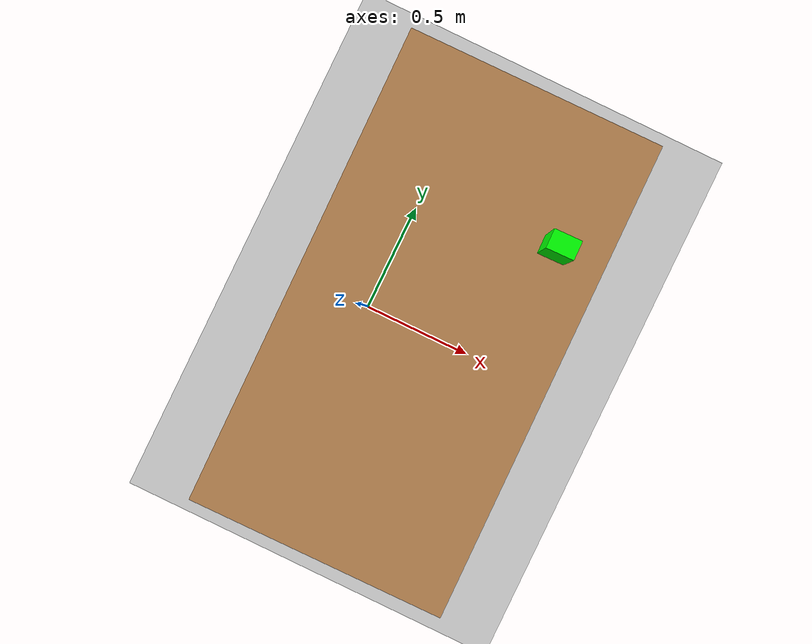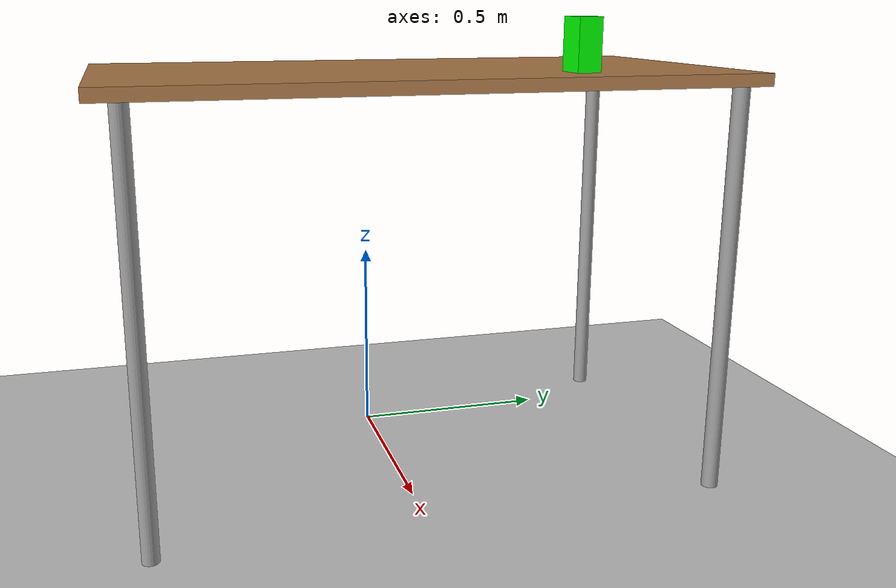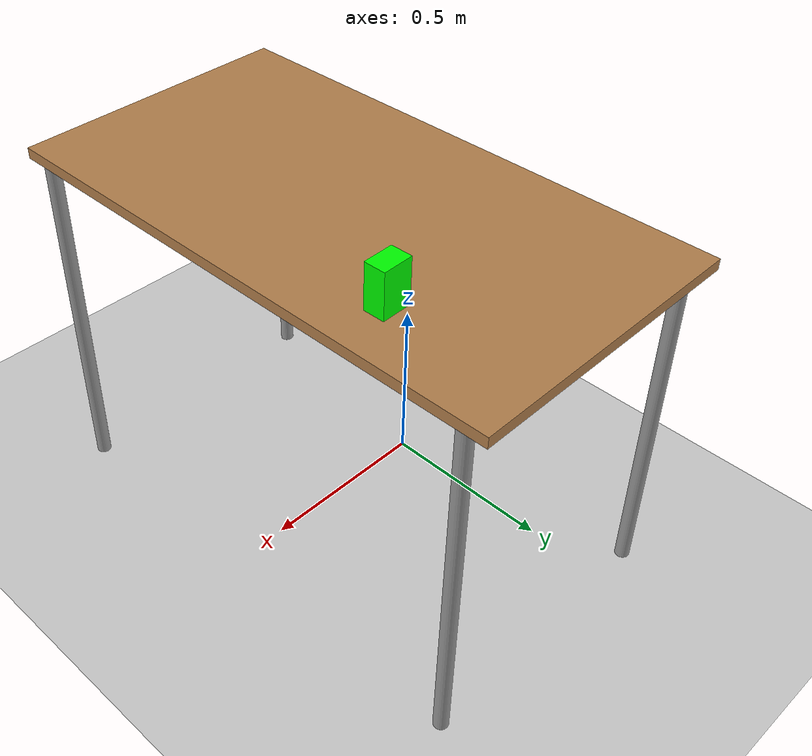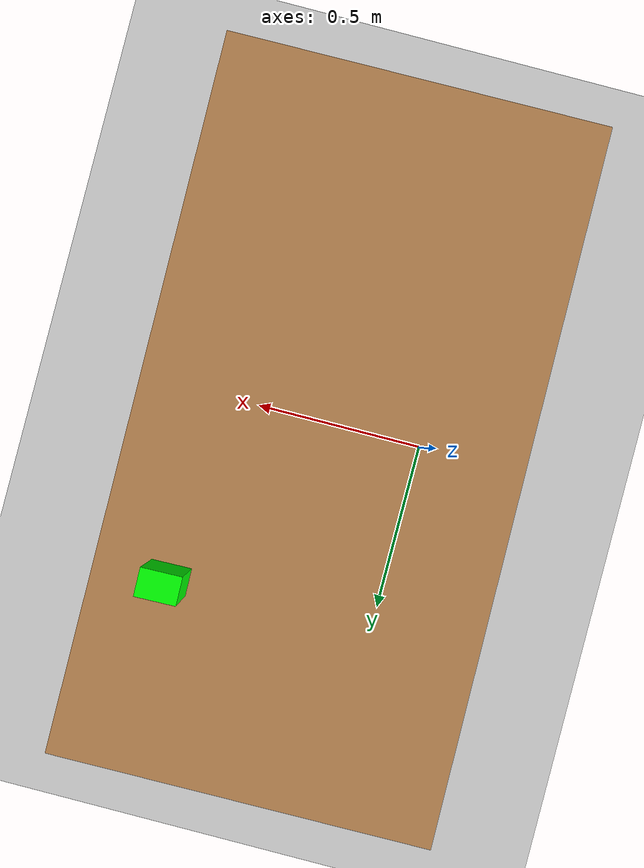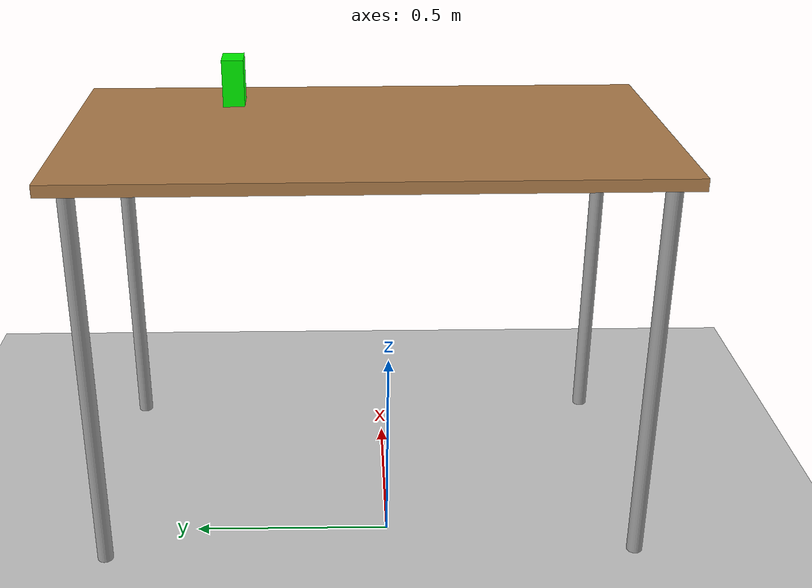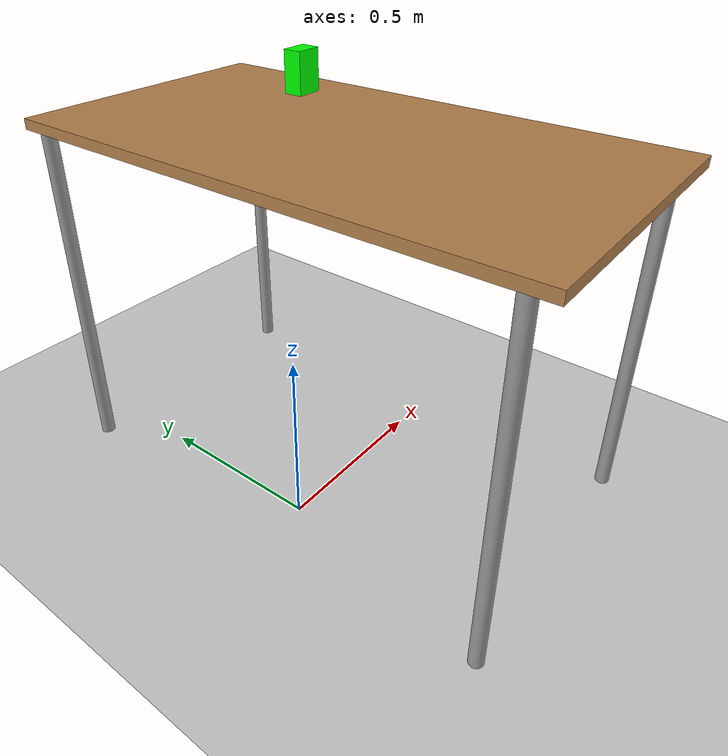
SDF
<sdf version="1.6">
 <world name="default">
  <light name="sun" type="directional">
   <pose>0 0 10 0 -0 0</pose>
   <diffuse>0.8 0.8 0.8 1</diffuse>
   <specular>0.2 0.2 0.2 1</specular>
   <attenuation>
    <range>1000</range>
    <constant>0.9</constant>
    <linear>0.01</linear>
    <quadratic>0.001</quadratic>
   </attenuation>
   <direction>-0.5 0.1 -0.9</direction>
  </light>
  <model name="ground_plane">
   <static>1</static>
   <link name="link">
    <collision name="collision">
     <geometry><plane><normal>0 0 1</normal><size>100 100</size></plane></geometry>
     <surface>
      <contact><collide_bitmask>65535</collide_bitmask></contact>
      <friction><ode><mu>100</mu><mu2>50</mu2></ode></friction>
     </surface>
    </collision>
    <visual name="visual">
     <cast_shadows>0</cast_shadows>
     <geometry><plane><normal>0 0 1</normal><size>100 100</size></plane></geometry>
     <material>
      <script><uri>file://media/materials/scripts/gazebo.material</uri><name>Gazebo/Grey</name></script>
     </material>
    </visual>
   </link>
  </model>
  <gravity>0 0 -9.8</gravity>
  <magnetic_field>6e-06 2.3e-05 -4.2e-05</magnetic_field>
  <atmosphere type="adiabatic"/>
  <physics name="default_physics" default="0" type="ode">
   <max_step_size>0.001</max_step_size>
   <real_time_factor>1</real_time_factor>
   <real_time_update_rate>1000</real_time_update_rate>
  </physics>
  <scene><ambient>0.4 0.4 0.4 1</ambient><background>0.7 0.7 0.7 1</background><shadows>1</shadows></scene>
  <spherical_coordinates>
   <surface_model>EARTH_WGS84</surface_model>
   <latitude_deg>0</latitude_deg>
   <longitude_deg>0</longitude_deg>
   <elevation>0</elevation>
   <heading_deg>0</heading_deg>
  </spherical_coordinates>
  <model name="unit_box_cuboid3">
   <link name="link">
    <inertial>
     <mass>0.539714</mass>
     <inertia>
      <ixx>0.00083945</ixx>
      <ixy>0</ixy>
      <ixz>0</ixz>
      <iyy>0.000999456</iyy>
      <iyz>0</iyz>
      <izz>0.000453123</izz>
     </inertia>
    </inertial>
    <pose>-0 -0 0.983709 0 -0 0</pose>
    <visual name="visual">
     <geometry><box><size>0.08256 0.057084 0.12412</size></box></geometry>
     <material>
      <script><name>Gazebo/Grey</name><uri>file://media/materials/scripts/gazebo.material</uri></script>
      <shader type="pixel"><normal_map>__default__</normal_map></shader>
      <ambient>0 1 0 0</ambient>
      <diffuse>0.7 0.7 0.7 1</diffuse>
      <specular>0.01 0.01 0.01 1</specular>
      <emissive>0 0 0 1</emissive>
     </material>
    </visual>
    <collision name="collision">
     <geometry><box><size>0.08256 0.057084 0.12412</size></box></geometry>
     <surface>
      <friction>
       <ode><mu>1</mu><mu2>1</mu2><fdir1>0 0 0</fdir1><slip1>0</slip1><slip2>0</slip2></ode>
       <torsional>
        <coefficient>1</coefficient>
        <patch_radius>0</patch_radius>
        <surface_radius>0</surface_radius>
        <use_patch_radius>1</use_patch_radius>
        <ode><slip>0</slip></ode>
       </torsional>
      </friction>
      <bounce><restitution_coefficient>0</restitution_coefficient><threshold>1e+06</threshold></bounce>
      <contact>
       <collide_without_contact>0</collide_without_contact>
       <collide_without_contact_bitmask>1</collide_without_contact_bitmask>
       <collide_bitmask>1</collide_bitmask>
       <ode>
        <soft_cfm>0</soft_cfm>
        <soft_erp>0.2</soft_erp>
        <kp>1e+13</kp>
        <kd>1</kd>
        <max_vel>0.01</max_vel>
        <min_depth>0</min_depth>
       </ode>
       <bullet>
        <split_impulse>1</split_impulse>
        <split_impulse_penetration_threshold>-0.01</split_impulse_penetration_threshold>
        <soft_cfm>0</soft_cfm>
        <soft_erp>0.2</soft_erp>
        <kp>1e+13</kp>
        <kd>1</kd>
       </bullet>
      </contact>
     </surface>
    </collision>
   </link>
   <static>0</static>
   <pose>0.510809 0.397023 0.093347 3.5e-05 -6.4e-05 0.022437</pose>
  </model>
  <model name="table1">
   <link name="link">
    <pose>-0.120516 -0.001132 0 0 0 -1.5614</pose>
    <visual name="visual1">
     <pose>0 0 1 0 -0 0</pose>
     <geometry><box><size>1.5 0.8 0.03</size></box></geometry>
     <material>
      <script><uri>file://media/materials/scripts/gazebo.material</uri><name>Gazebo/Wood</name></script>
      <shader type="pixel"/>
     </material>
    </visual>
    <visual name="back_left_leg">
     <pose>-0.68 0.38 0.5 0 -0 0</pose>
     <geometry><cylinder><radius>0.02</radius><length>1</length></cylinder></geometry>
     <material>
      <script><uri>file://media/materials/scripts/gazebo.material</uri><name>Gazebo/Grey</name></script>
      <shader type="pixel"/>
     </material>
    </visual>
    <visual name="front_right_leg">
     <pose>0.68 -0.38 0.5 0 -0 0</pose>
     <geometry><cylinder><radius>0.02</radius><length>1</length></cylinder></geometry>
     <material>
      <script><uri>file://media/materials/scripts/gazebo.material</uri><name>Gazebo/Grey</name></script>
      <shader type="pixel"/>
     </material>
    </visual>
    <visual name="back_right_leg">
     <pose>-0.68 -0.38 0.5 0 -0 0</pose>
     <geometry><cylinder><radius>0.02</radius><length>1</length></cylinder></geometry>
     <material>
      <script><uri>file://media/materials/scripts/gazebo.material</uri><name>Gazebo/Grey</name></script>
      <shader type="pixel"/>
     </material>
    </visual>
    <visual name="front_left_leg">
     <pose>0.68 0.38 0.5 0 -0 0</pose>
     <geometry><cylinder><radius>0.02</radius><length>1</length></cylinder></geometry>
     <material>
      <script><uri>file://media/materials/scripts/gazebo.material</uri><name>Gazebo/Grey</name></script>
      <shader type="pixel"/>
     </material>
    </visual>
    <collision name="surface">
     <pose>0 0 1 0 -0 0</pose>
     <geometry><box><size>1.5 0.8 0.03</size></box></geometry>
     <surface>
      <friction>
       <ode><mu>0.6</mu><mu2>0.6</mu2><fdir1>0 0 0</fdir1><slip1>0</slip1><slip2>0</slip2></ode>
       <torsional>
        <coefficient>1</coefficient>
        <patch_radius>0</patch_radius>
        <surface_radius>0</surface_radius>
        <use_patch_radius>1</use_patch_radius>
        <ode><slip>0</slip></ode>
       </torsional>
      </friction>
      <bounce><restitution_coefficient>0</restitution_coefficient><threshold>1e+06</threshold></bounce>
      <contact>
       <collide_without_contact>0</collide_without_contact>
       <collide_without_contact_bitmask>1</collide_without_contact_bitmask>
       <collide_bitmask>1</collide_bitmask>
       <ode>
        <soft_cfm>0</soft_cfm>
        <soft_erp>0.2</soft_erp>
        <kp>1e+13</kp>
        <kd>1</kd>
        <max_vel>0.01</max_vel>
        <min_depth>0</min_depth>
       </ode>
       <bullet>
        <split_impulse>1</split_impulse>
        <split_impulse_penetration_threshold>-0.01</split_impulse_penetration_threshold>
        <soft_cfm>0</soft_cfm>
        <soft_erp>0.2</soft_erp>
        <kp>1e+13</kp>
        <kd>1</kd>
       </bullet>
      </contact>
     </surface>
    </collision>
    <collision name="front_left_leg">
     <pose>0.68 0.38 0.5 0 -0 0</pose>
     <geometry><cylinder><radius>0.02</radius><length>1</length></cylinder></geometry>
     <surface>
      <friction>
       <ode><mu>1</mu><mu2>1</mu2><fdir1>0 0 0</fdir1><slip1>0</slip1><slip2>0</slip2></ode>
       <torsional>
        <coefficient>1</coefficient>
        <patch_radius>0</patch_radius>
        <surface_radius>0</surface_radius>
        <use_patch_radius>1</use_patch_radius>
        <ode><slip>0</slip></ode>
       </torsional>
      </friction>
      <bounce><restitution_coefficient>0</restitution_coefficient><threshold>1e+06</threshold></bounce>
      <contact>
       <collide_without_contact>0</collide_without_contact>
       <collide_without_contact_bitmask>1</collide_without_contact_bitmask>
       <collide_bitmask>1</collide_bitmask>
       <ode>
        <soft_cfm>0</soft_cfm>
        <soft_erp>0.2</soft_erp>
        <kp>1e+13</kp>
        <kd>1</kd>
        <max_vel>0.01</max_vel>
        <min_depth>0</min_depth>
       </ode>
       <bullet>
        <split_impulse>1</split_impulse>
        <split_impulse_penetration_threshold>-0.01</split_impulse_penetration_threshold>
        <soft_cfm>0</soft_cfm>
        <soft_erp>0.2</soft_erp>
        <kp>1e+13</kp>
        <kd>1</kd>
       </bullet>
      </contact>
     </surface>
    </collision>
    <collision name="back_right_leg">
     <pose>-0.68 -0.38 0.5 0 -0 0</pose>
     <geometry><cylinder><radius>0.02</radius><length>1</length></cylinder></geometry>
     <surface>
      <friction>
       <ode><mu>1</mu><mu2>1</mu2><fdir1>0 0 0</fdir1><slip1>0</slip1><slip2>0</slip2></ode>
       <torsional>
        <coefficient>1</coefficient>
        <patch_radius>0</patch_radius>
        <surface_radius>0</surface_radius>
        <use_patch_radius>1</use_patch_radius>
        <ode><slip>0</slip></ode>
       </torsional>
      </friction>
      <bounce><restitution_coefficient>0</restitution_coefficient><threshold>1e+06</threshold></bounce>
      <contact>
       <collide_without_contact>0</collide_without_contact>
       <collide_without_contact_bitmask>1</collide_without_contact_bitmask>
       <collide_bitmask>1</collide_bitmask>
       <ode>
        <soft_cfm>0</soft_cfm>
        <soft_erp>0.2</soft_erp>
        <kp>1e+13</kp>
        <kd>1</kd>
        <max_vel>0.01</max_vel>
        <min_depth>0</min_depth>
       </ode>
       <bullet>
        <split_impulse>1</split_impulse>
        <split_impulse_penetration_threshold>-0.01</split_impulse_penetration_threshold>
        <soft_cfm>0</soft_cfm>
        <soft_erp>0.2</soft_erp>
        <kp>1e+13</kp>
        <kd>1</kd>
       </bullet>
      </contact>
     </surface>
    </collision>
    <collision name="front_right_leg">
     <pose>0.68 -0.38 0.5 0 -0 0</pose>
     <geometry><cylinder><radius>0.02</radius><length>1</length></cylinder></geometry>
     <surface>
      <friction>
       <ode><mu>1</mu><mu2>1</mu2><fdir1>0 0 0</fdir1><slip1>0</slip1><slip2>0</slip2></ode>
       <torsional>
        <coefficient>1</coefficient>
        <patch_radius>0</patch_radius>
        <surface_radius>0</surface_radius>
        <use_patch_radius>1</use_patch_radius>
        <ode><slip>0</slip></ode>
       </torsional>
      </friction>
      <bounce><restitution_coefficient>0</restitution_coefficient><threshold>1e+06</threshold></bounce>
      <contact>
       <collide_without_contact>0</collide_without_contact>
       <collide_without_contact_bitmask>1</collide_without_contact_bitmask>
       <collide_bitmask>1</collide_bitmask>
       <ode>
        <soft_cfm>0</soft_cfm>
        <soft_erp>0.2</soft_erp>
        <kp>1e+13</kp>
        <kd>1</kd>
        <max_vel>0.01</max_vel>
        <min_depth>0</min_depth>
       </ode>
       <bullet>
        <split_impulse>1</split_impulse>
        <split_impulse_penetration_threshold>-0.01</split_impulse_penetration_threshold>
        <soft_cfm>0</soft_cfm>
        <soft_erp>0.2</soft_erp>
        <kp>1e+13</kp>
        <kd>1</kd>
       </bullet>
      </contact>
     </surface>
    </collision>
    <collision name="back_left_leg">
     <pose>-0.68 0.38 0.5 0 -0 0</pose>
     <geometry><cylinder><radius>0.02</radius><length>1</length></cylinder></geometry>
     <surface>
      <friction>
       <ode><mu>1</mu><mu2>1</mu2><fdir1>0 0 0</fdir1><slip1>0</slip1><slip2>0</slip2></ode>
       <torsional>
        <coefficient>1</coefficient>
        <patch_radius>0</patch_radius>
        <surface_radius>0</surface_radius>
        <use_patch_radius>1</use_patch_radius>
        <ode><slip>0</slip></ode>
       </torsional>
      </friction>
      <bounce><restitution_coefficient>0</restitution_coefficient><threshold>1e+06</threshold></bounce>
      <contact>
       <collide_without_contact>0</collide_without_contact>
       <collide_without_contact_bitmask>1</collide_without_contact_bitmask>
       <collide_bitmask>1</collide_bitmask>
       <ode>
        <soft_cfm>0</soft_cfm>
        <soft_erp>0.2</soft_erp>
        <kp>1e+13</kp>
        <kd>1</kd>
        <max_vel>0.01</max_vel>
        <min_depth>0</min_depth>
       </ode>
       <bullet>
        <split_impulse>1</split_impulse>
        <split_impulse_penetration_threshold>-0.01</split_impulse_penetration_threshold>
        <soft_cfm>0</soft_cfm>
        <soft_erp>0.2</soft_erp>
        <kp>1e+13</kp>
        <kd>1</kd>
       </bullet>
      </contact>
     </surface>
    </collision>
   </link>
   <static>1</static>
   <pose>0.38963 0.048896 0 0 -0 0</pose>
  </model>
 </world>
</sdf>
